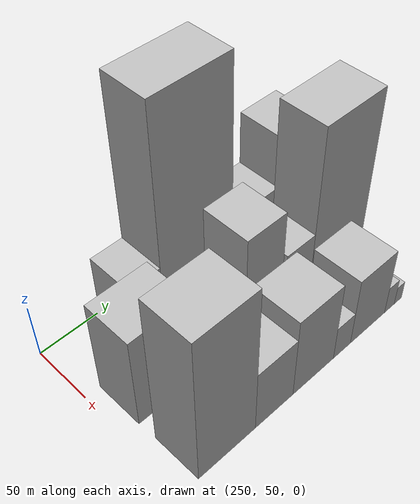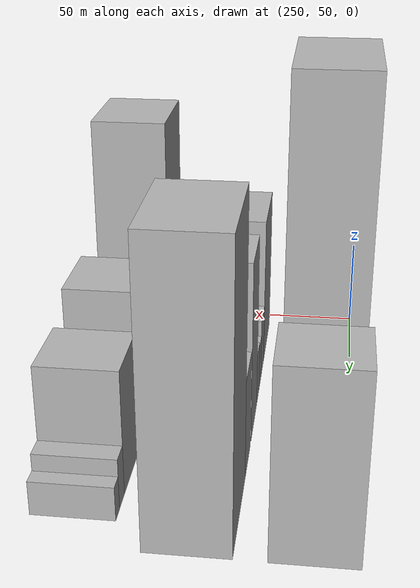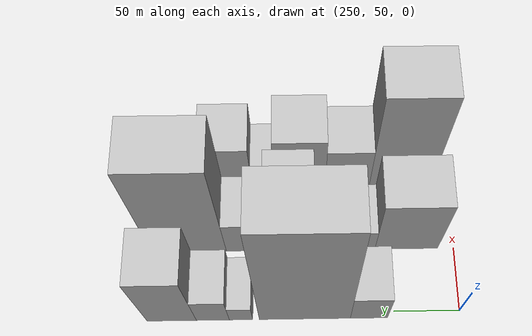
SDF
<sdf version="1.6">
 <world name="default">
  <model name="building_182">
   <static>1</static>
   <pose>265.0000 119.2384 0 0.000000 0.000000 0.000000</pose>
   <link name="link">
    <pose>0 0 25.50 0 0 0</pose>
    <collision name="collision"><geometry><box><size>40.0000 28.2844 51.0000</size></box></geometry></collision>
    <visual name="visual">
     <cast_shadows>0</cast_shadows>
     <geometry><box><size>40.0000 28.2844 51.0000</size></box></geometry>
     <material>
      <script>
       <uri>model://HANNAS_wall/materials/scripts</uri>
       <uri>model://HANNAS_wall/materials/textures</uri>
       <name>vrc/HANNAS_wall</name>
      </script>
     </material>
    </visual>
   </link>
  </model>
  <model name="building_183">
   <static>1</static>
   <pose>265.0000 167.9091 0 0.000000 0.000000 0.000000</pose>
   <link name="link">
    <pose>0 0 96.00 0 0 0</pose>
    <collision name="collision"><geometry><box><size>40.0000 69.0570 192.0000</size></box></geometry></collision>
    <visual name="visual">
     <cast_shadows>0</cast_shadows>
     <geometry><box><size>40.0000 69.0570 192.0000</size></box></geometry>
     <material>
      <script>
       <uri>model://HANNAS_wall/materials/scripts</uri>
       <uri>model://HANNAS_wall/materials/textures</uri>
       <name>vrc/HANNAS_wall</name>
      </script>
     </material>
    </visual>
   </link>
  </model>
  <model name="building_184">
   <static>1</static>
   <pose>265.0000 216.3122 0 0.000000 0.000000 0.000000</pose>
   <link name="link">
    <pose>0 0 15.00 0 0 0</pose>
    <collision name="collision"><geometry><box><size>40.0000 17.7493 30.0000</size></box></geometry></collision>
    <visual name="visual">
     <cast_shadows>0</cast_shadows>
     <geometry><box><size>40.0000 17.7493 30.0000</size></box></geometry>
     <material>
      <script>
       <uri>model://HANNAS_wall/materials/scripts</uri>
       <uri>model://HANNAS_wall/materials/textures</uri>
       <name>vrc/HANNAS_wall</name>
      </script>
     </material>
    </visual>
   </link>
  </model>
  <model name="building_185">
   <static>1</static>
   <pose>265.0000 237.6852 0 0.000000 0.000000 0.000000</pose>
   <link name="link">
    <pose>0 0 24.00 0 0 0</pose>
    <collision name="collision"><geometry><box><size>40.0000 24.9967 48.0000</size></box></geometry></collision>
    <visual name="visual">
     <cast_shadows>0</cast_shadows>
     <geometry><box><size>40.0000 24.9967 48.0000</size></box></geometry>
     <material>
      <script>
       <uri>model://HANNAS_wall/materials/scripts</uri>
       <uri>model://HANNAS_wall/materials/textures</uri>
       <name>vrc/HANNAS_wall</name>
      </script>
     </material>
    </visual>
   </link>
  </model>
  <model name="building_186">
   <static>1</static>
   <pose>265.0000 268.8765 0 0.000000 0.000000 0.000000</pose>
   <link name="link">
    <pose>0 0 48.00 0 0 0</pose>
    <collision name="collision"><geometry><box><size>40.0000 37.3858 96.0000</size></box></geometry></collision>
    <visual name="visual">
     <cast_shadows>0</cast_shadows>
     <geometry><box><size>40.0000 37.3858 96.0000</size></box></geometry>
     <material>
      <script>
       <uri>model://HANNAS_wall/materials/scripts</uri>
       <uri>model://HANNAS_wall/materials/textures</uri>
       <name>vrc/HANNAS_wall</name>
      </script>
     </material>
    </visual>
   </link>
  </model>
  <model name="building_232">
   <static>1</static>
   <pose>320.0000 87.2360 0 0.000000 0.000000 0.000000</pose>
   <link name="link">
    <pose>0 0 43.50 0 0 0</pose>
    <collision name="collision"><geometry><box><size>40.0000 49.4651 87.0000</size></box></geometry></collision>
    <visual name="visual">
     <cast_shadows>0</cast_shadows>
     <geometry><box><size>40.0000 49.4651 87.0000</size></box></geometry>
     <material>
      <script>
       <uri>model://HANNAS_wall/materials/scripts</uri>
       <uri>model://HANNAS_wall/materials/textures</uri>
       <name>vrc/HANNAS_wall</name>
      </script>
     </material>
    </visual>
   </link>
  </model>
  <model name="building_233">
   <static>1</static>
   <pose>320.0000 121.8916 0 0.000000 0.000000 0.000000</pose>
   <link name="link">
    <pose>0 0 18.00 0 0 0</pose>
    <collision name="collision"><geometry><box><size>40.0000 19.8460 36.0000</size></box></geometry></collision>
    <visual name="visual">
     <cast_shadows>0</cast_shadows>
     <geometry><box><size>40.0000 19.8460 36.0000</size></box></geometry>
     <material>
      <script>
       <uri>model://HANNAS_wall/materials/scripts</uri>
       <uri>model://HANNAS_wall/materials/textures</uri>
       <name>vrc/HANNAS_wall</name>
      </script>
     </material>
    </visual>
   </link>
  </model>
  <model name="building_234">
   <static>1</static>
   <pose>320.0000 138.3473 0 0.000000 0.000000 0.000000</pose>
   <link name="link">
    <pose>0 0 13.50 0 0 0</pose>
    <collision name="collision"><geometry><box><size>40.0000 13.0655 27.0000</size></box></geometry></collision>
    <visual name="visual">
     <cast_shadows>0</cast_shadows>
     <geometry><box><size>40.0000 13.0655 27.0000</size></box></geometry>
     <material>
      <script>
       <uri>model://HANNAS_wall/materials/scripts</uri>
       <uri>model://HANNAS_wall/materials/textures</uri>
       <name>vrc/HANNAS_wall</name>
      </script>
     </material>
    </visual>
   </link>
  </model>
  <model name="building_235">
   <static>1</static>
   <pose>320.0000 152.6804 0 0.000000 0.000000 0.000000</pose>
   <link name="link">
    <pose>0 0 15.00 0 0 0</pose>
    <collision name="collision"><geometry><box><size>40.0000 15.6007 30.0000</size></box></geometry></collision>
    <visual name="visual">
     <cast_shadows>0</cast_shadows>
     <geometry><box><size>40.0000 15.6007 30.0000</size></box></geometry>
     <material>
      <script>
       <uri>model://HANNAS_wall/materials/scripts</uri>
       <uri>model://HANNAS_wall/materials/textures</uri>
       <name>vrc/HANNAS_wall</name>
      </script>
     </material>
    </visual>
   </link>
  </model>
  <model name="building_236">
   <static>1</static>
   <pose>320.0000 178.4413 0 0.000000 0.000000 0.000000</pose>
   <link name="link">
    <pose>0 0 49.50 0 0 0</pose>
    <collision name="collision"><geometry><box><size>40.0000 35.9211 99.0000</size></box></geometry></collision>
    <visual name="visual">
     <cast_shadows>0</cast_shadows>
     <geometry><box><size>40.0000 35.9211 99.0000</size></box></geometry>
     <material>
      <script>
       <uri>model://HANNAS_wall/materials/scripts</uri>
       <uri>model://HANNAS_wall/materials/textures</uri>
       <name>vrc/HANNAS_wall</name>
      </script>
     </material>
    </visual>
   </link>
  </model>
  <model name="building_237">
   <static>1</static>
   <pose>320.0000 214.5837 0 0.000000 0.000000 0.000000</pose>
   <link name="link">
    <pose>0 0 27.00 0 0 0</pose>
    <collision name="collision"><geometry><box><size>40.0000 28.3636 54.0000</size></box></geometry></collision>
    <visual name="visual">
     <cast_shadows>0</cast_shadows>
     <geometry><box><size>40.0000 28.3636 54.0000</size></box></geometry>
     <material>
      <script>
       <uri>model://HANNAS_wall/materials/scripts</uri>
       <uri>model://HANNAS_wall/materials/textures</uri>
       <name>vrc/HANNAS_wall</name>
      </script>
     </material>
    </visual>
   </link>
  </model>
  <model name="building_238">
   <static>1</static>
   <pose>320.0000 258.0376 0 0.000000 0.000000 0.000000</pose>
   <link name="link">
    <pose>0 0 75.00 0 0 0</pose>
    <collision name="collision"><geometry><box><size>40.0000 58.5442 150.0000</size></box></geometry></collision>
    <visual name="visual">
     <cast_shadows>0</cast_shadows>
     <geometry><box><size>40.0000 58.5442 150.0000</size></box></geometry>
     <material>
      <script>
       <uri>model://HANNAS_wall/materials/scripts</uri>
       <uri>model://HANNAS_wall/materials/textures</uri>
       <name>vrc/HANNAS_wall</name>
      </script>
     </material>
    </visual>
   </link>
  </model>
  <model name="building_282">
   <static>1</static>
   <pose>375.0000 88.5706 0 0.000000 0.000000 0.000000</pose>
   <link name="link">
    <pose>0 0 70.50 0 0 0</pose>
    <collision name="collision"><geometry><box><size>40.0000 50.3038 141.0000</size></box></geometry></collision>
    <visual name="visual">
     <cast_shadows>0</cast_shadows>
     <geometry><box><size>40.0000 50.3038 141.0000</size></box></geometry>
     <material>
      <script>
       <uri>model://HANNAS_wall/materials/scripts</uri>
       <uri>model://HANNAS_wall/materials/textures</uri>
       <name>vrc/HANNAS_wall</name>
      </script>
     </material>
    </visual>
   </link>
  </model>
  <model name="building_283">
   <static>1</static>
   <pose>375.0000 131.6533 0 0.000000 0.000000 0.000000</pose>
   <link name="link">
    <pose>0 0 30.00 0 0 0</pose>
    <collision name="collision"><geometry><box><size>40.0000 35.8616 60.0000</size></box></geometry></collision>
    <visual name="visual">
     <cast_shadows>0</cast_shadows>
     <geometry><box><size>40.0000 35.8616 60.0000</size></box></geometry>
     <material>
      <script>
       <uri>model://HANNAS_wall/materials/scripts</uri>
       <uri>model://HANNAS_wall/materials/textures</uri>
       <name>vrc/HANNAS_wall</name>
      </script>
     </material>
    </visual>
   </link>
  </model>
  <model name="building_284">
   <static>1</static>
   <pose>375.0000 170.2382 0 0.000000 0.000000 0.000000</pose>
   <link name="link">
    <pose>0 0 39.00 0 0 0</pose>
    <collision name="collision"><geometry><box><size>40.0000 41.3083 78.0000</size></box></geometry></collision>
    <visual name="visual">
     <cast_shadows>0</cast_shadows>
     <geometry><box><size>40.0000 41.3083 78.0000</size></box></geometry>
     <material>
      <script>
       <uri>model://HANNAS_wall/materials/scripts</uri>
       <uri>model://HANNAS_wall/materials/textures</uri>
       <name>vrc/HANNAS_wall</name>
      </script>
     </material>
    </visual>
   </link>
  </model>
  <model name="building_285">
   <static>1</static>
   <pose>375.0000 200.0402 0 0.000000 0.000000 0.000000</pose>
   <link name="link">
    <pose>0 0 16.50 0 0 0</pose>
    <collision name="collision"><geometry><box><size>40.0000 18.2957 33.0000</size></box></geometry></collision>
    <visual name="visual">
     <cast_shadows>0</cast_shadows>
     <geometry><box><size>40.0000 18.2957 33.0000</size></box></geometry>
     <material>
      <script>
       <uri>model://HANNAS_wall/materials/scripts</uri>
       <uri>model://HANNAS_wall/materials/textures</uri>
       <name>vrc/HANNAS_wall</name>
      </script>
     </material>
    </visual>
   </link>
  </model>
  <model name="building_286">
   <static>1</static>
   <pose>375.0000 228.3293 0 0.000000 0.000000 0.000000</pose>
   <link name="link">
    <pose>0 0 33.00 0 0 0</pose>
    <collision name="collision"><geometry><box><size>40.0000 38.2826 66.0000</size></box></geometry></collision>
    <visual name="visual">
     <cast_shadows>0</cast_shadows>
     <geometry><box><size>40.0000 38.2826 66.0000</size></box></geometry>
     <material>
      <script>
       <uri>model://HANNAS_wall/materials/scripts</uri>
       <uri>model://HANNAS_wall/materials/textures</uri>
       <name>vrc/HANNAS_wall</name>
      </script>
     </material>
    </visual>
   </link>
  </model>
  <model name="building_287">
   <static>1</static>
   <pose>375.0000 253.1263 0 0.000000 0.000000 0.000000</pose>
   <link name="link">
    <pose>0 0 13.50 0 0 0</pose>
    <collision name="collision"><geometry><box><size>40.0000 11.3114 27.0000</size></box></geometry></collision>
    <visual name="visual">
     <cast_shadows>0</cast_shadows>
     <geometry><box><size>40.0000 11.3114 27.0000</size></box></geometry>
     <material>
      <script>
       <uri>model://HANNAS_wall/materials/scripts</uri>
       <uri>model://HANNAS_wall/materials/textures</uri>
       <name>vrc/HANNAS_wall</name>
      </script>
     </material>
    </visual>
   </link>
  </model>
  <model name="building_288">
   <static>1</static>
   <pose>375.0000 263.0697 0 0.000000 0.000000 0.000000</pose>
   <link name="link">
    <pose>0 0 9.00 0 0 0</pose>
    <collision name="collision"><geometry><box><size>40.0000 8.5753 18.0000</size></box></geometry></collision>
    <visual name="visual">
     <cast_shadows>0</cast_shadows>
     <geometry><box><size>40.0000 8.5753 18.0000</size></box></geometry>
     <material>
      <script>
       <uri>model://HANNAS_wall/materials/scripts</uri>
       <uri>model://HANNAS_wall/materials/textures</uri>
       <name>vrc/HANNAS_wall</name>
      </script>
     </material>
    </visual>
   </link>
  </model>
 </world>
</sdf>
